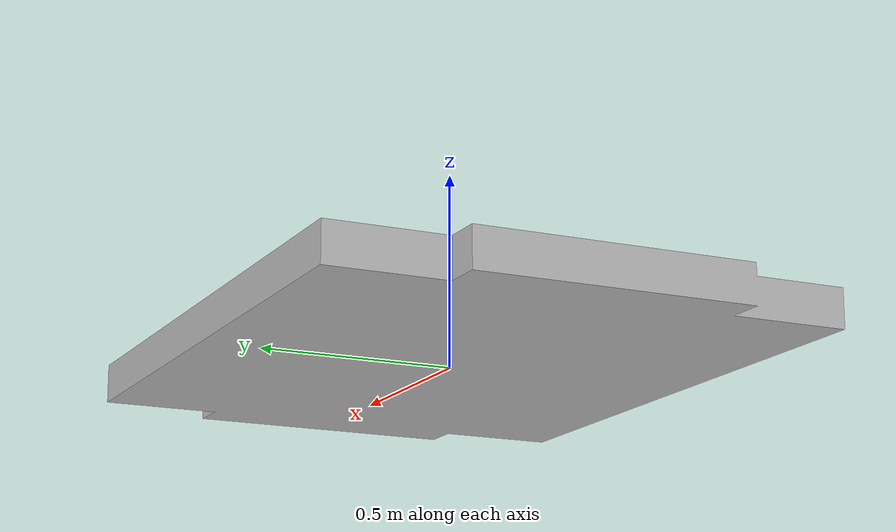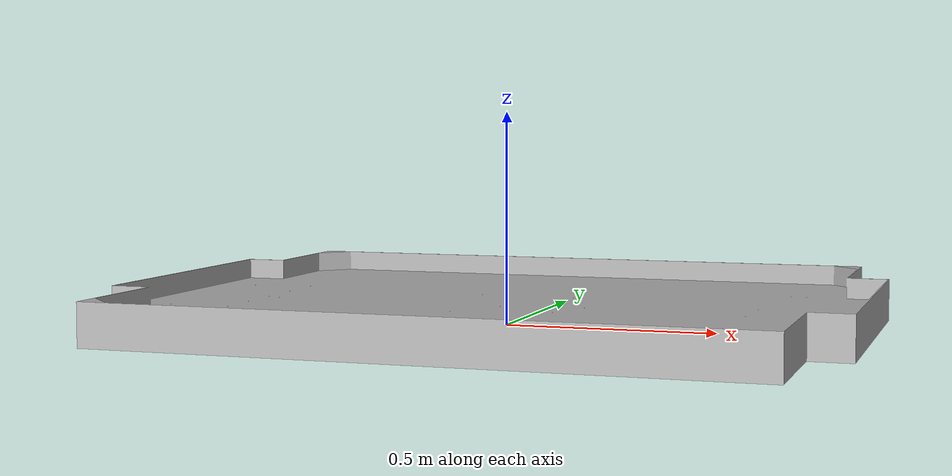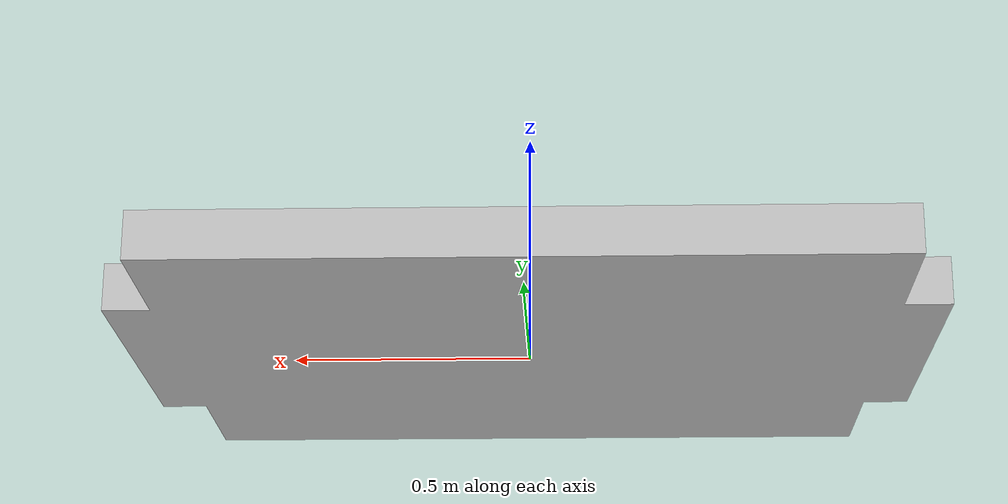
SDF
<?xml version='1.0'?>
<sdf version='1.7'>
    <model name="vsss_field">
        <static>true</static>
        <link name="link">
            <!-- Visual del campo -->
            <visual name="visual">
                <geometry>
                    <mesh>
                        <uri>model://vsss_field/meshes/base_field.STL</uri>
                        <scale>1 1 1</scale>
                    </mesh>
                </geometry>
            </visual>
            <collision name = "collision">
                <geometry>
                <mesh>
                    <uri>model://vsss_field/meshes/base_field.STL</uri>
                        <scale>1 1 1</scale>
                </mesh>
                </geometry>
            </collision>

        </link>
    </model>
</sdf>
